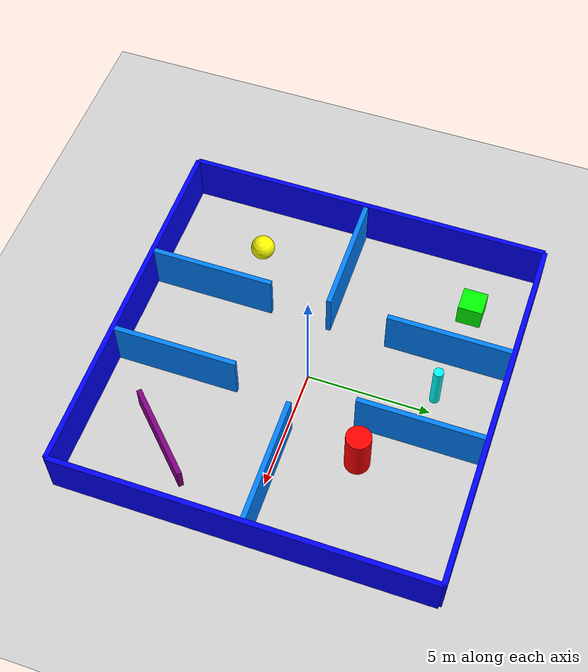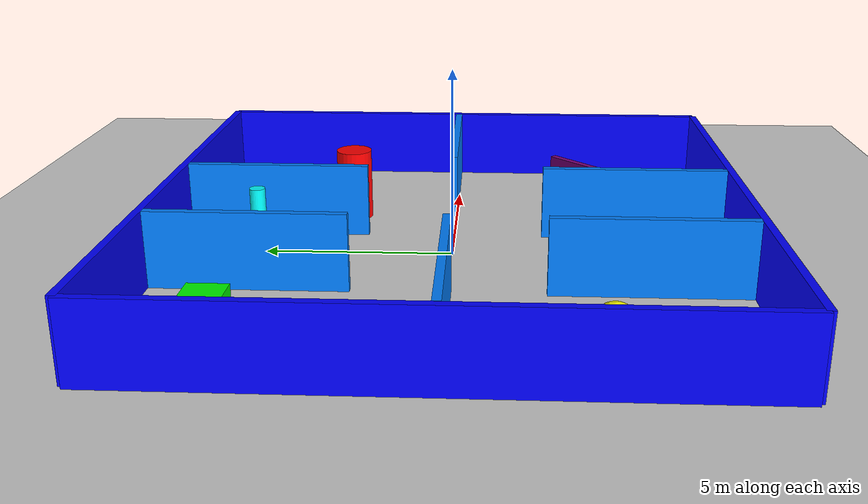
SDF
<sdf version="1.7">
 <world name="custom_room">
  <physics name="1ms" type="ignored">
   <max_step_size>0.001</max_step_size>
   <real_time_factor>1.0</real_time_factor>
   <real_time_update_rate>1000</real_time_update_rate>
  </physics>
  <plugin filename="libignition-gazebo-physics-system.so" name="ignition::gazebo::systems::Physics"/>
  <plugin filename="libignition-gazebo-user-commands-system.so" name="ignition::gazebo::systems::UserCommands"/>
  <plugin filename="libignition-gazebo-sensors-system.so" name="ignition::gazebo::systems::Sensors">
   <render_engine>ogre2</render_engine>
  </plugin>
  <plugin filename="libignition-gazebo-scene-broadcaster-system.so" name="ignition::gazebo::systems::SceneBroadcaster"/>
  <light type="directional" name="sun">
   <pose>0 0 10 0 0 0</pose>
   <diffuse>0.8 0.8 0.8 1</diffuse>
   <specular>0.2 0.2 0.2 1</specular>
   <direction>-0.5 0.1 -0.9</direction>
  </light>
  <model name="ground_plane">
   <static>true</static>
   <link name="link">
    <collision name="collision">
     <geometry><plane><normal>0 0 1</normal><size>100 100</size></plane></geometry>
     <surface><friction><ode><mu>100</mu><mu2>50</mu2></ode></friction></surface>
    </collision>
    <visual name="visual">
     <geometry><plane><normal>0 0 1</normal><size>100 100</size></plane></geometry>
     <material>
      <ambient>0.8 0.8 0.8 1</ambient>
      <diffuse>0.8 0.8 0.8 1</diffuse>
      <specular>0.8 0.8 0.8 1</specular>
     </material>
    </visual>
   </link>
  </model>
  <model name="wall_north">
   <static>true</static>
   <pose>0 7.5 1 0 0 0</pose>
   <link name="link">
    <collision name="collision"><geometry><box><size>15 0.2 2</size></box></geometry></collision>
    <visual name="visual">
     <geometry><box><size>15 0.2 2</size></box></geometry>
     <material><ambient>0.0 0.0 1.0 1</ambient><diffuse>0.0 0.0 1.0 1</diffuse></material>
    </visual>
   </link>
  </model>
  <model name="wall_south">
   <static>true</static>
   <pose>0 -7.5 1 0 0 0</pose>
   <link name="link">
    <collision name="collision"><geometry><box><size>15 0.2 2</size></box></geometry></collision>
    <visual name="visual">
     <geometry><box><size>15 0.2 2</size></box></geometry>
     <material><ambient>0.0 0.0 1.0 1</ambient><diffuse>0.0 0.0 1.0 1</diffuse></material>
    </visual>
   </link>
  </model>
  <model name="wall_east">
   <static>true</static>
   <pose>7.5 0 1 0 0 0</pose>
   <link name="link">
    <collision name="collision"><geometry><box><size>0.2 15 2</size></box></geometry></collision>
    <visual name="visual">
     <geometry><box><size>0.2 15 2</size></box></geometry>
     <material><ambient>0.0 0.0 1.0 1</ambient><diffuse>0.0 0.0 1.0 1</diffuse></material>
    </visual>
   </link>
  </model>
  <model name="wall_west">
   <static>true</static>
   <pose>-7.5 0 1 0 0 0</pose>
   <link name="link">
    <collision name="collision"><geometry><box><size>0.2 15 2</size></box></geometry></collision>
    <visual name="visual">
     <geometry><box><size>0.2 15 2</size></box></geometry>
     <material><ambient>0.0 0.0 1.0 1</ambient><diffuse>0.0 0.0 1.0 1</diffuse></material>
    </visual>
   </link>
  </model>
  <model name="obs_cylinder_red">
   <static>true</static>
   <pose>3 3 1 0 0 0</pose>
   <link name="link">
    <collision name="collision">
     <geometry><cylinder><radius>0.5</radius><length>2</length></cylinder></geometry>
    </collision>
    <visual name="visual">
     <geometry><cylinder><radius>0.5</radius><length>2</length></cylinder></geometry>
     <material><ambient>1 0 0 1</ambient><diffuse>1 0 0 1</diffuse></material>
    </visual>
   </link>
  </model>
  <model name="obs_box_green">
   <static>true</static>
   <pose>-4.98 5.30 0.5 0 0 0</pose>
   <link name="link">
    <collision name="collision"><geometry><box><size>1 1 1</size></box></geometry></collision>
    <visual name="visual">
     <geometry><box><size>1 1 1</size></box></geometry>
     <material><ambient>0 1 0 1</ambient><diffuse>0 1 0 1</diffuse></material>
    </visual>
   </link>
  </model>
  <model name="obs_sphere_yellow">
   <static>true</static>
   <pose>-5.11 -3.77 0.5 0 0 0</pose>
   <link name="link">
    <collision name="collision"><geometry><sphere><radius>0.5</radius></sphere></geometry></collision>
    <visual name="visual">
     <geometry><sphere><radius>0.5</radius></sphere></geometry>
     <material><ambient>1 1 0 1</ambient><diffuse>1 1 0 1</diffuse></material>
    </visual>
   </link>
  </model>
  <model name="obs_wall_purple">
   <static>true</static>
   <pose>4.67 -4.34 0.5 0 0 0.785</pose>
   <link name="link">
    <collision name="collision"><geometry><box><size>4 0.2 1</size></box></geometry></collision>
    <visual name="visual">
     <geometry><box><size>4 0.2 1</size></box></geometry>
     <material><ambient>0.5 0 0.5 1</ambient><diffuse>0.5 0 0.5 1</diffuse></material>
    </visual>
   </link>
  </model>
  <model name="wall_internal">
   <static>true</static>
   <pose>-2.47 4.91 1 0 0 0</pose>
   <link name="link">
    <collision name="collision"><geometry><box><size>0.2 5 2</size></box></geometry></collision>
    <visual name="visual">
     <geometry><box><size>0.2 5 2</size></box></geometry>
     <material><ambient>0.0 1.0 1.0 1</ambient><diffuse>0.0 0.5 1.0 1</diffuse></material>
    </visual>
   </link>
  </model>
  <model name="wall_internal_1">
   <static>true</static>
   <pose>1.48 4.91 1 0 0 0</pose>
   <link name="link">
    <collision name="collision"><geometry><box><size>0.2 5 2</size></box></geometry></collision>
    <visual name="visual">
     <geometry><box><size>0.2 5 2</size></box></geometry>
     <material><ambient>0.0 1.0 1.0 1</ambient><diffuse>0.0 0.5 1.0 1</diffuse></material>
    </visual>
   </link>
  </model>
  <model name="wall_internal_2">
   <static>true</static>
   <pose>1.48 -4.91 1 0 0 0</pose>
   <link name="link">
    <collision name="collision"><geometry><box><size>0.2 5 2</size></box></geometry></collision>
    <visual name="visual">
     <geometry><box><size>0.2 5 2</size></box></geometry>
     <material><ambient>0.0 1.0 1.0 1</ambient><diffuse>0.0 0.5 1.0 1</diffuse></material>
    </visual>
   </link>
  </model>
  <model name="wall_internal_3">
   <static>true</static>
   <pose>-2.5 -4.91 1 0 0 0</pose>
   <link name="link">
    <collision name="collision"><geometry><box><size>0.2 5 2</size></box></geometry></collision>
    <visual name="visual">
     <geometry><box><size>0.2 5 2</size></box></geometry>
     <material><ambient>0.0 1.0 1.0 1</ambient><diffuse>0.0 0.5 1.0 1</diffuse></material>
    </visual>
   </link>
  </model>
  <model name="wall_internal_4">
   <static>true</static>
   <pose>4.91 0.1 1 0 0 -1.56</pose>
   <link name="link">
    <collision name="collision"><geometry><box><size>0.2 5 2</size></box></geometry></collision>
    <visual name="visual">
     <geometry><box><size>0.2 5 2</size></box></geometry>
     <material><ambient>0.0 1.0 1.0 1</ambient><diffuse>0.0 0.5 1.0 1</diffuse></material>
    </visual>
   </link>
  </model>
  <model name="wall_internal_5">
   <static>true</static>
   <pose>-4.88 0 1 0 0 -1.56</pose>
   <link name="link">
    <collision name="collision"><geometry><box><size>0.2 5 2</size></box></geometry></collision>
    <visual name="visual">
     <geometry><box><size>0.2 5 2</size></box></geometry>
     <material><ambient>0.0 1.0 1.0 1</ambient><diffuse>0.0 0.5 1.0 1</diffuse></material>
    </visual>
   </link>
  </model>
  <model name="obs_pillar_cyan">
   <static>true</static>
   <pose>-0.66 5 1 0 0 0</pose>
   <link name="link">
    <collision name="collision">
     <geometry><cylinder><radius>0.2</radius><length>2</length></cylinder></geometry>
    </collision>
    <visual name="visual">
     <geometry><cylinder><radius>0.2</radius><length>2</length></cylinder></geometry>
     <material><ambient>0 1 1 1</ambient><diffuse>0 1 1 1</diffuse></material>
    </visual>
   </link>
  </model>
 </world>
</sdf>
